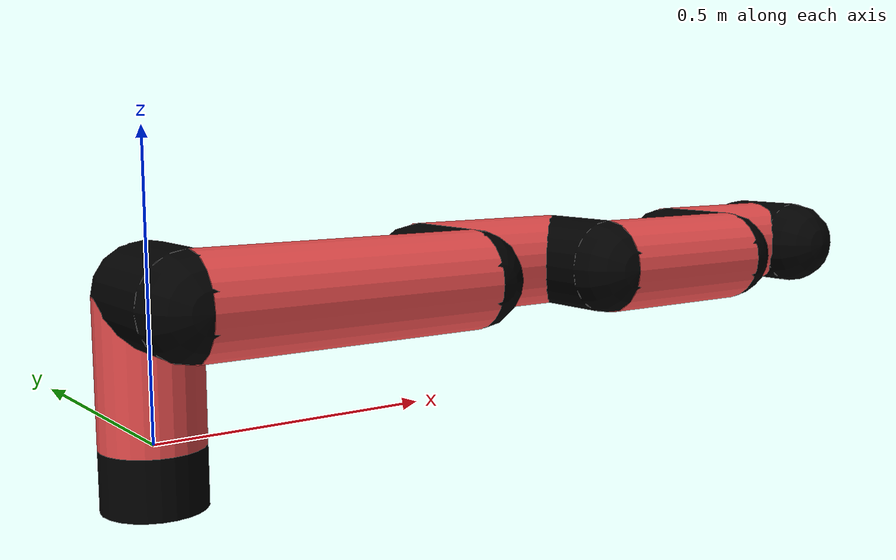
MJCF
<mujoco model="manipulator">
		<compiler angle="degree" coordinate="local" inertiafromgeom="auto" meshdir="meshes/"/>
		<option gravity="0 0 0" integrator="RK4" iterations="30" timestep="0.01"/>

		<default>
		<joint armature="1" limited="true" stiffness="10" damping="15" frictionloss="5.0"/>
		<geom conaffinity="1" condim="3" contype="1" friction=".5 .1 .1" margin="0.002"/>
		<motor ctrllimited="true"/>
		<position ctrllimited="true"/>
		</default>

		<asset>
		<texture builtin="gradient" height="100" rgb1="1.0 1.0 1.0" rgb2="1.0 1.0 1.0" type="skybox" width="100"/>
		<texture builtin="flat" height="32" name="arm_tex" rgb1="0.9 0.3 0.3" type="2d" width="32"/>
		<texture builtin="flat" height="32" name="gripper_tex" rgb1="0.0 0.0 0.0" type="cube" width="32"/>

		<material name="arm_mat" shininess="0.1" specular="0.1" texture="arm_tex"/>
		<material name="gripper_mat" shininess="1" specular="1" texture="gripper_tex"/>
		</asset>

		<worldbody>
		<light cutoff="45" diffuse=".8 .8 .8" dir="0 0.16 -1" directional="false" name="light" pos="0 -2.0 8.0" specular="0.3 0.3 0.3"/>

		<body name="base_link" pos="0 0 -0.1">
		<geom fromto="0 0 0 0 0 0.1" material="arm_mat" name="base_link" rgba="0.0 0.0 0.0 1" size="0.085" type="cylinder"/>
		</body>

		<body name="l1" pos="0 0 0">
<geom fromto="0 0 0 0 0 0.24" material="arm_mat" name="l1" rgba="0.9 0.3 0.3 1" size="0.085" type="cylinder"/>
<geom fromto="0 0 0.24 0 -0.16 0.24" material="arm_mat" name="l1_ex" rgba="0.0 0.0 0.0 1" size="0.085" type="capsule"/>
<joint axis="0 0 1" name="j1" pos="0 0 0" range="-90 90" damping="25.96" frictionloss="10.12"/>

<body name="l2" pos="0 -0.16 0.24">
<geom fromto="0 0 0 0.51 0 0" material="arm_mat" name="l2" rgba="0.9 0.3 0.3 1" size="0.085" type="cylinder"/>
<geom fromto="0.51 0 0 0.51 0.16 0" material="arm_mat" name="l2_ex" rgba="0.0 0.0 0.0 1" size="0.085" type="capsule"/>
<joint axis="0.0 1.0 0.0" name="j2" pos="0 0 0" range="-90 60" damping="22.65" frictionloss="12.26"/>

<body name="l3" pos="0.51 0.16 0">
<geom fromto="0 0 0 0.31 0 0" material="arm_mat" name="l3" rgba="0.9 0.3 0.3 1" size="0.085" type="cylinder"/>
<geom fromto="0.31 0 0 0.31 -0.16 0" material="arm_mat" name="l3_ex" rgba="0.0 0.0 0.0 1" size="0.085" type="capsule"/>
<joint axis="0.0 1.0 0.0" name="j3" pos="0 0 0" range="-30 60" damping="25.38" frictionloss="8.72"/>

<body name="l4" pos="0.31 -0.16 0">
<geom fromto="0 0 0 0.32 0 0" material="arm_mat" name="l4" rgba="0.9 0.3 0.3 1" size="0.085" type="cylinder"/>
<geom fromto="0.32 0 0 0.32 0.16 0" material="arm_mat" name="l4_ex" rgba="0.0 0.0 0.0 1" size="0.085" type="capsule"/>
<joint axis="0.0 1.0 0.0" name="j4" pos="0 0 0" range="-30 60" damping="36.13" frictionloss="8.82"/>

<body name="l5" pos="0.32 0.16 0">
<geom fromto="0 0 0 0.27 0 0" material="arm_mat" name="l5" rgba="0.9 0.3 0.3 1" size="0.085" type="cylinder"/>
<joint axis="0.0 1.0 0.0" name="j5" pos="0 0 0" range="-30 60" damping="22.94" frictionloss="7.55"/>

<body name="gripper" pos="0.27 0 0">
<geom fromto="0.05 -0.07 0 0.05 0.07 0" material="gripper_mat" name="gripper" rgba="0.0 0.0 0.0 1" size="0.085" type="capsule"/><joint axis="1 0 0" name="j6" pos="0 0 0" range="-90 90" damping="15" frictionloss="5.0"/><body name="finger" pos="0.1 0 0">
<geom fromto="0 0.0 0 0.1 0.0 0" material="gripper_mat" name="finger" rgba="0.0 0.0 0.0 1" size="0.020 0.06 0.06" type="box"/>
</body>
<site name="current" pos="0.2 0. 0.0" rgba="0. 0. 1.0 1" size="0.02" type="sphere"/>
</body>
</body>
</body>
</body>
</body>
</body>
</worldbody>
<actuator>
<motor ctrllimited="true" ctrlrange="-1.0 1.0" joint="j1" gear="88.59"/>
<motor ctrllimited="true" ctrlrange="-1.0 1.0" joint="j2" gear="78.33"/>
<motor ctrllimited="true" ctrlrange="-1.0 1.0" joint="j3" gear="68.57"/>
<motor ctrllimited="true" ctrlrange="-1.0 1.0" joint="j4" gear="73.98"/>
<motor ctrllimited="true" ctrlrange="-1.0 1.0" joint="j5" gear="91.24"/>
<motor ctrllimited="true" ctrlrange="-1.0 1.0" joint="j6" gear="80"/>
</actuator>
</mujoco>
